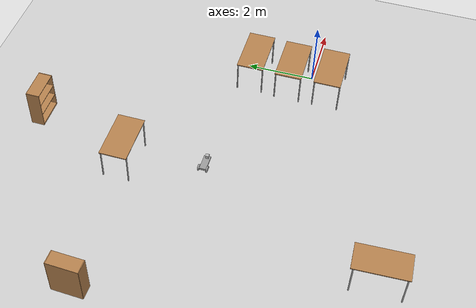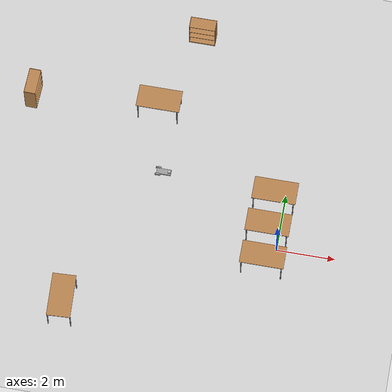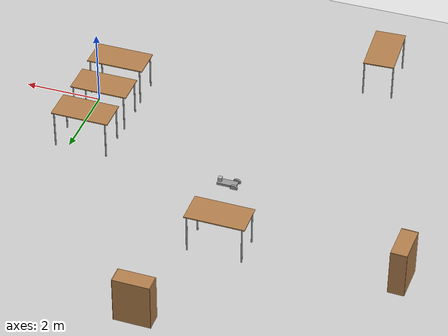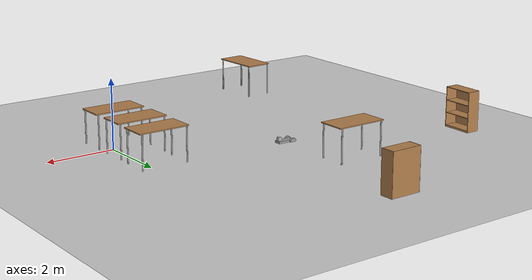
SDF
<sdf version="1.6">
 <world name="default">
  <model name="ground_plane">
   <static>1</static>
   <link name="link">
    <collision name="collision">
     <geometry><plane><normal>0 0 1</normal><size>100 100</size></plane></geometry>
     <surface>
      <contact><collide_bitmask>65535</collide_bitmask></contact>
      <friction><ode><mu>100</mu><mu2>50</mu2></ode></friction>
     </surface>
    </collision>
    <visual name="visual">
     <cast_shadows>0</cast_shadows>
     <geometry><plane><normal>0 0 1</normal><size>100 100</size></plane></geometry>
     <material>
      <script><uri>file://media/materials/scripts/gazebo.material</uri><name>Gazebo/Grey</name></script>
     </material>
    </visual>
   </link>
  </model>
  <model name="table_clone_4">
   <static>1</static>
   <link name="link">
    <collision name="surface">
     <pose>0 0 1 0 -0 0</pose>
     <geometry><box><size>1.5 0.8 0.03</size></box></geometry>
     <surface><friction><ode><mu>0.6</mu><mu2>0.6</mu2></ode></friction></surface>
    </collision>
    <visual name="visual1">
     <pose>0 0 1 0 -0 0</pose>
     <geometry><box><size>1.5 0.8 0.03</size></box></geometry>
     <material>
      <script><uri>file://media/materials/scripts/gazebo.material</uri><name>Gazebo/Wood</name></script>
     </material>
    </visual>
    <collision name="front_left_leg">
     <pose>0.68 0.38 0.5 0 -0 0</pose>
     <geometry><cylinder><radius>0.02</radius><length>1</length></cylinder></geometry>
    </collision>
    <visual name="front_left_leg">
     <pose>0.68 0.38 0.5 0 -0 0</pose>
     <geometry><cylinder><radius>0.02</radius><length>1</length></cylinder></geometry>
     <material>
      <script><uri>file://media/materials/scripts/gazebo.material</uri><name>Gazebo/Grey</name></script>
     </material>
    </visual>
    <collision name="front_right_leg">
     <pose>0.68 -0.38 0.5 0 -0 0</pose>
     <geometry><cylinder><radius>0.02</radius><length>1</length></cylinder></geometry>
    </collision>
    <visual name="front_right_leg">
     <pose>0.68 -0.38 0.5 0 -0 0</pose>
     <geometry><cylinder><radius>0.02</radius><length>1</length></cylinder></geometry>
     <material>
      <script><uri>file://media/materials/scripts/gazebo.material</uri><name>Gazebo/Grey</name></script>
     </material>
    </visual>
    <collision name="back_right_leg">
     <pose>-0.68 -0.38 0.5 0 -0 0</pose>
     <geometry><cylinder><radius>0.02</radius><length>1</length></cylinder></geometry>
    </collision>
    <visual name="back_right_leg">
     <pose>-0.68 -0.38 0.5 0 -0 0</pose>
     <geometry><cylinder><radius>0.02</radius><length>1</length></cylinder></geometry>
     <material>
      <script><uri>file://media/materials/scripts/gazebo.material</uri><name>Gazebo/Grey</name></script>
     </material>
    </visual>
    <collision name="back_left_leg">
     <pose>-0.68 0.38 0.5 0 -0 0</pose>
     <geometry><cylinder><radius>0.02</radius><length>1</length></cylinder></geometry>
    </collision>
    <visual name="back_left_leg">
     <pose>-0.68 0.38 0.5 0 -0 0</pose>
     <geometry><cylinder><radius>0.02</radius><length>1</length></cylinder></geometry>
     <material>
      <script><uri>file://media/materials/scripts/gazebo.material</uri><name>Gazebo/Grey</name></script>
     </material>
    </visual>
   </link>
   <pose>-0.355759 1.73772 0 0 -0 0</pose>
  </model>
  <model name="table_clone_5">
   <static>1</static>
   <link name="link">
    <collision name="surface">
     <pose>0 0 1 0 -0 0</pose>
     <geometry><box><size>1.5 0.8 0.03</size></box></geometry>
     <surface><friction><ode><mu>0.6</mu><mu2>0.6</mu2></ode></friction></surface>
    </collision>
    <visual name="visual1">
     <pose>0 0 1 0 -0 0</pose>
     <geometry><box><size>1.5 0.8 0.03</size></box></geometry>
     <material>
      <script><uri>file://media/materials/scripts/gazebo.material</uri><name>Gazebo/Wood</name></script>
     </material>
    </visual>
    <collision name="front_left_leg">
     <pose>0.68 0.38 0.5 0 -0 0</pose>
     <geometry><cylinder><radius>0.02</radius><length>1</length></cylinder></geometry>
    </collision>
    <visual name="front_left_leg">
     <pose>0.68 0.38 0.5 0 -0 0</pose>
     <geometry><cylinder><radius>0.02</radius><length>1</length></cylinder></geometry>
     <material>
      <script><uri>file://media/materials/scripts/gazebo.material</uri><name>Gazebo/Grey</name></script>
     </material>
    </visual>
    <collision name="front_right_leg">
     <pose>0.68 -0.38 0.5 0 -0 0</pose>
     <geometry><cylinder><radius>0.02</radius><length>1</length></cylinder></geometry>
    </collision>
    <visual name="front_right_leg">
     <pose>0.68 -0.38 0.5 0 -0 0</pose>
     <geometry><cylinder><radius>0.02</radius><length>1</length></cylinder></geometry>
     <material>
      <script><uri>file://media/materials/scripts/gazebo.material</uri><name>Gazebo/Grey</name></script>
     </material>
    </visual>
    <collision name="back_right_leg">
     <pose>-0.68 -0.38 0.5 0 -0 0</pose>
     <geometry><cylinder><radius>0.02</radius><length>1</length></cylinder></geometry>
    </collision>
    <visual name="back_right_leg">
     <pose>-0.68 -0.38 0.5 0 -0 0</pose>
     <geometry><cylinder><radius>0.02</radius><length>1</length></cylinder></geometry>
     <material>
      <script><uri>file://media/materials/scripts/gazebo.material</uri><name>Gazebo/Grey</name></script>
     </material>
    </visual>
    <collision name="back_left_leg">
     <pose>-0.68 0.38 0.5 0 -0 0</pose>
     <geometry><cylinder><radius>0.02</radius><length>1</length></cylinder></geometry>
    </collision>
    <visual name="back_left_leg">
     <pose>-0.68 0.38 0.5 0 -0 0</pose>
     <geometry><cylinder><radius>0.02</radius><length>1</length></cylinder></geometry>
     <material>
      <script><uri>file://media/materials/scripts/gazebo.material</uri><name>Gazebo/Grey</name></script>
     </material>
    </visual>
   </link>
   <pose>-0.391017 0.561094 0 0 -0 0</pose>
  </model>
  <model name="table_clone_6">
   <static>1</static>
   <link name="link">
    <collision name="surface">
     <pose>0 0 1 0 -0 0</pose>
     <geometry><box><size>1.5 0.8 0.03</size></box></geometry>
     <surface><friction><ode><mu>0.6</mu><mu2>0.6</mu2></ode></friction></surface>
    </collision>
    <visual name="visual1">
     <pose>0 0 1 0 -0 0</pose>
     <geometry><box><size>1.5 0.8 0.03</size></box></geometry>
     <material>
      <script><uri>file://media/materials/scripts/gazebo.material</uri><name>Gazebo/Wood</name></script>
     </material>
    </visual>
    <collision name="front_left_leg">
     <pose>0.68 0.38 0.5 0 -0 0</pose>
     <geometry><cylinder><radius>0.02</radius><length>1</length></cylinder></geometry>
    </collision>
    <visual name="front_left_leg">
     <pose>0.68 0.38 0.5 0 -0 0</pose>
     <geometry><cylinder><radius>0.02</radius><length>1</length></cylinder></geometry>
     <material>
      <script><uri>file://media/materials/scripts/gazebo.material</uri><name>Gazebo/Grey</name></script>
     </material>
    </visual>
    <collision name="front_right_leg">
     <pose>0.68 -0.38 0.5 0 -0 0</pose>
     <geometry><cylinder><radius>0.02</radius><length>1</length></cylinder></geometry>
    </collision>
    <visual name="front_right_leg">
     <pose>0.68 -0.38 0.5 0 -0 0</pose>
     <geometry><cylinder><radius>0.02</radius><length>1</length></cylinder></geometry>
     <material>
      <script><uri>file://media/materials/scripts/gazebo.material</uri><name>Gazebo/Grey</name></script>
     </material>
    </visual>
    <collision name="back_right_leg">
     <pose>-0.68 -0.38 0.5 0 -0 0</pose>
     <geometry><cylinder><radius>0.02</radius><length>1</length></cylinder></geometry>
    </collision>
    <visual name="back_right_leg">
     <pose>-0.68 -0.38 0.5 0 -0 0</pose>
     <geometry><cylinder><radius>0.02</radius><length>1</length></cylinder></geometry>
     <material>
      <script><uri>file://media/materials/scripts/gazebo.material</uri><name>Gazebo/Grey</name></script>
     </material>
    </visual>
    <collision name="back_left_leg">
     <pose>-0.68 0.38 0.5 0 -0 0</pose>
     <geometry><cylinder><radius>0.02</radius><length>1</length></cylinder></geometry>
    </collision>
    <visual name="back_left_leg">
     <pose>-0.68 0.38 0.5 0 -0 0</pose>
     <geometry><cylinder><radius>0.02</radius><length>1</length></cylinder></geometry>
     <material>
      <script><uri>file://media/materials/scripts/gazebo.material</uri><name>Gazebo/Grey</name></script>
     </material>
    </visual>
   </link>
   <pose>-0.375932 -0.615177 0 0 -0 0</pose>
  </model>
  <model name="table_clone_4_clone">
   <static>1</static>
   <link name="link">
    <collision name="surface">
     <pose>0 0 1 0 -0 0</pose>
     <geometry><box><size>1.5 0.8 0.03</size></box></geometry>
     <surface><friction><ode><mu>0.6</mu><mu2>0.6</mu2></ode></friction></surface>
    </collision>
    <visual name="visual1">
     <pose>0 0 1 0 -0 0</pose>
     <geometry><box><size>1.5 0.8 0.03</size></box></geometry>
     <material>
      <script><uri>file://media/materials/scripts/gazebo.material</uri><name>Gazebo/Wood</name></script>
     </material>
    </visual>
    <collision name="front_left_leg">
     <pose>0.68 0.38 0.5 0 -0 0</pose>
     <geometry><cylinder><radius>0.02</radius><length>1</length></cylinder></geometry>
    </collision>
    <visual name="front_left_leg">
     <pose>0.68 0.38 0.5 0 -0 0</pose>
     <geometry><cylinder><radius>0.02</radius><length>1</length></cylinder></geometry>
     <material>
      <script><uri>file://media/materials/scripts/gazebo.material</uri><name>Gazebo/Grey</name></script>
     </material>
    </visual>
    <collision name="front_right_leg">
     <pose>0.68 -0.38 0.5 0 -0 0</pose>
     <geometry><cylinder><radius>0.02</radius><length>1</length></cylinder></geometry>
    </collision>
    <visual name="front_right_leg">
     <pose>0.68 -0.38 0.5 0 -0 0</pose>
     <geometry><cylinder><radius>0.02</radius><length>1</length></cylinder></geometry>
     <material>
      <script><uri>file://media/materials/scripts/gazebo.material</uri><name>Gazebo/Grey</name></script>
     </material>
    </visual>
    <collision name="back_right_leg">
     <pose>-0.68 -0.38 0.5 0 -0 0</pose>
     <geometry><cylinder><radius>0.02</radius><length>1</length></cylinder></geometry>
    </collision>
    <visual name="back_right_leg">
     <pose>-0.68 -0.38 0.5 0 -0 0</pose>
     <geometry><cylinder><radius>0.02</radius><length>1</length></cylinder></geometry>
     <material>
      <script><uri>file://media/materials/scripts/gazebo.material</uri><name>Gazebo/Grey</name></script>
     </material>
    </visual>
    <collision name="back_left_leg">
     <pose>-0.68 0.38 0.5 0 -0 0</pose>
     <geometry><cylinder><radius>0.02</radius><length>1</length></cylinder></geometry>
    </collision>
    <visual name="back_left_leg">
     <pose>-0.68 0.38 0.5 0 -0 0</pose>
     <geometry><cylinder><radius>0.02</radius><length>1</length></cylinder></geometry>
     <material>
      <script><uri>file://media/materials/scripts/gazebo.material</uri><name>Gazebo/Grey</name></script>
     </material>
    </visual>
   </link>
   <pose>-4.81486 4.39365 0 0 -0 0</pose>
  </model>
  <model name="bookshelf">
   <static>1</static>
   <link name="link">
    <inertial><mass>1</mass></inertial>
    <collision name="back">
     <pose>0 0.005 0.6 0 -0 0</pose>
     <geometry><box><size>0.9 0.01 1.2</size></box></geometry>
    </collision>
    <visual name="visual1">
     <pose>0 0.005 0.6 0 -0 0</pose>
     <geometry><box><size>0.9 0.01 1.2</size></box></geometry>
     <material>
      <script><uri>file://media/materials/scripts/gazebo.material</uri><name>Gazebo/Wood</name></script>
     </material>
    </visual>
    <collision name="left_side">
     <pose>0.45 -0.195 0.6 0 -0 0</pose>
     <geometry><box><size>0.02 0.4 1.2</size></box></geometry>
    </collision>
    <visual name="visual2">
     <pose>0.45 -0.195 0.6 0 -0 0</pose>
     <geometry><box><size>0.02 0.4 1.2</size></box></geometry>
     <material>
      <script><uri>file://media/materials/scripts/gazebo.material</uri><name>Gazebo/Wood</name></script>
     </material>
    </visual>
    <collision name="right_side">
     <pose>-0.45 -0.195 0.6 0 -0 0</pose>
     <geometry><box><size>0.02 0.4 1.2</size></box></geometry>
    </collision>
    <visual name="visual3">
     <pose>-0.45 -0.195 0.6 0 -0 0</pose>
     <geometry><box><size>0.02 0.4 1.2</size></box></geometry>
     <material>
      <script><uri>file://media/materials/scripts/gazebo.material</uri><name>Gazebo/Wood</name></script>
     </material>
    </visual>
    <collision name="bottom">
     <pose>0 -0.195 0.03 0 -0 0</pose>
     <geometry><box><size>0.88 0.4 0.06</size></box></geometry>
    </collision>
    <visual name="visual4">
     <pose>0 -0.195 0.03 0 -0 0</pose>
     <geometry><box><size>0.88 0.4 0.06</size></box></geometry>
     <material>
      <script><uri>file://media/materials/scripts/gazebo.material</uri><name>Gazebo/Wood</name></script>
     </material>
    </visual>
    <collision name="top">
     <pose>0 -0.195 1.19 0 -0 0</pose>
     <geometry><box><size>0.88 0.4 0.02</size></box></geometry>
    </collision>
    <visual name="visual5">
     <pose>0 -0.195 1.19 0 -0 0</pose>
     <geometry><box><size>0.88 0.4 0.02</size></box></geometry>
     <material>
      <script><uri>file://media/materials/scripts/gazebo.material</uri><name>Gazebo/Wood</name></script>
     </material>
    </visual>
    <collision name="low_shelf">
     <pose>0 -0.195 0.43 0 -0 0</pose>
     <geometry><box><size>0.88 0.4 0.02</size></box></geometry>
    </collision>
    <visual name="visual6">
     <pose>0 -0.195 0.43 0 -0 0</pose>
     <geometry><box><size>0.88 0.4 0.02</size></box></geometry>
     <material>
      <script><uri>file://media/materials/scripts/gazebo.material</uri><name>Gazebo/Wood</name></script>
     </material>
    </visual>
    <collision name="high_shelf">
     <pose>0 -0.195 0.8 0 -0 0</pose>
     <geometry><box><size>0.88 0.4 0.02</size></box></geometry>
    </collision>
    <visual name="visual7">
     <pose>0 -0.195 0.8 0 -0 0</pose>
     <geometry><box><size>0.88 0.4 0.02</size></box></geometry>
     <material>
      <script><uri>file://media/materials/scripts/gazebo.material</uri><name>Gazebo/Wood</name></script>
     </material>
    </visual>
   </link>
   <pose>-9.38503 4.19513 0 0 -0 1.54267</pose>
  </model>
  <model name="bookshelf_0">
   <static>1</static>
   <link name="link">
    <inertial><mass>1</mass></inertial>
    <collision name="back">
     <pose>0 0.005 0.6 0 -0 0</pose>
     <geometry><box><size>0.9 0.01 1.2</size></box></geometry>
    </collision>
    <visual name="visual1">
     <pose>0 0.005 0.6 0 -0 0</pose>
     <geometry><box><size>0.9 0.01 1.2</size></box></geometry>
     <material>
      <script><uri>file://media/materials/scripts/gazebo.material</uri><name>Gazebo/Wood</name></script>
     </material>
    </visual>
    <collision name="left_side">
     <pose>0.45 -0.195 0.6 0 -0 0</pose>
     <geometry><box><size>0.02 0.4 1.2</size></box></geometry>
    </collision>
    <visual name="visual2">
     <pose>0.45 -0.195 0.6 0 -0 0</pose>
     <geometry><box><size>0.02 0.4 1.2</size></box></geometry>
     <material>
      <script><uri>file://media/materials/scripts/gazebo.material</uri><name>Gazebo/Wood</name></script>
     </material>
    </visual>
    <collision name="right_side">
     <pose>-0.45 -0.195 0.6 0 -0 0</pose>
     <geometry><box><size>0.02 0.4 1.2</size></box></geometry>
    </collision>
    <visual name="visual3">
     <pose>-0.45 -0.195 0.6 0 -0 0</pose>
     <geometry><box><size>0.02 0.4 1.2</size></box></geometry>
     <material>
      <script><uri>file://media/materials/scripts/gazebo.material</uri><name>Gazebo/Wood</name></script>
     </material>
    </visual>
    <collision name="bottom">
     <pose>0 -0.195 0.03 0 -0 0</pose>
     <geometry><box><size>0.88 0.4 0.06</size></box></geometry>
    </collision>
    <visual name="visual4">
     <pose>0 -0.195 0.03 0 -0 0</pose>
     <geometry><box><size>0.88 0.4 0.06</size></box></geometry>
     <material>
      <script><uri>file://media/materials/scripts/gazebo.material</uri><name>Gazebo/Wood</name></script>
     </material>
    </visual>
    <collision name="top">
     <pose>0 -0.195 1.19 0 -0 0</pose>
     <geometry><box><size>0.88 0.4 0.02</size></box></geometry>
    </collision>
    <visual name="visual5">
     <pose>0 -0.195 1.19 0 -0 0</pose>
     <geometry><box><size>0.88 0.4 0.02</size></box></geometry>
     <material>
      <script><uri>file://media/materials/scripts/gazebo.material</uri><name>Gazebo/Wood</name></script>
     </material>
    </visual>
    <collision name="low_shelf">
     <pose>0 -0.195 0.43 0 -0 0</pose>
     <geometry><box><size>0.88 0.4 0.02</size></box></geometry>
    </collision>
    <visual name="visual6">
     <pose>0 -0.195 0.43 0 -0 0</pose>
     <geometry><box><size>0.88 0.4 0.02</size></box></geometry>
     <material>
      <script><uri>file://media/materials/scripts/gazebo.material</uri><name>Gazebo/Wood</name></script>
     </material>
    </visual>
    <collision name="high_shelf">
     <pose>0 -0.195 0.8 0 -0 0</pose>
     <geometry><box><size>0.88 0.4 0.02</size></box></geometry>
    </collision>
    <visual name="visual7">
     <pose>0 -0.195 0.8 0 -0 0</pose>
     <geometry><box><size>0.88 0.4 0.02</size></box></geometry>
     <material>
      <script><uri>file://media/materials/scripts/gazebo.material</uri><name>Gazebo/Wood</name></script>
     </material>
    </visual>
   </link>
   <pose>-3.81555 7.54531 0 0 -0 0</pose>
  </model>
  <model name="table_clone_4_clone_0_clone">
   <static>1</static>
   <link name="link">
    <collision name="surface">
     <pose>0 0 1 0 -0 0</pose>
     <geometry><box><size>1.5 0.8 0.03</size></box></geometry>
     <surface><friction><ode><mu>0.6</mu><mu2>0.6</mu2></ode></friction></surface>
    </collision>
    <visual name="visual1">
     <pose>0 0 1 0 -0 0</pose>
     <geometry><box><size>1.5 0.8 0.03</size></box></geometry>
     <material>
      <script><uri>file://media/materials/scripts/gazebo.material</uri><name>Gazebo/Wood</name></script>
     </material>
    </visual>
    <collision name="front_left_leg">
     <pose>0.68 0.38 0.5 0 -0 0</pose>
     <geometry><cylinder><radius>0.02</radius><length>1</length></cylinder></geometry>
    </collision>
    <visual name="front_left_leg">
     <pose>0.68 0.38 0.5 0 -0 0</pose>
     <geometry><cylinder><radius>0.02</radius><length>1</length></cylinder></geometry>
     <material>
      <script><uri>file://media/materials/scripts/gazebo.material</uri><name>Gazebo/Grey</name></script>
     </material>
    </visual>
    <collision name="front_right_leg">
     <pose>0.68 -0.38 0.5 0 -0 0</pose>
     <geometry><cylinder><radius>0.02</radius><length>1</length></cylinder></geometry>
    </collision>
    <visual name="front_right_leg">
     <pose>0.68 -0.38 0.5 0 -0 0</pose>
     <geometry><cylinder><radius>0.02</radius><length>1</length></cylinder></geometry>
     <material>
      <script><uri>file://media/materials/scripts/gazebo.material</uri><name>Gazebo/Grey</name></script>
     </material>
    </visual>
    <collision name="back_right_leg">
     <pose>-0.68 -0.38 0.5 0 -0 0</pose>
     <geometry><cylinder><radius>0.02</radius><length>1</length></cylinder></geometry>
    </collision>
    <visual name="back_right_leg">
     <pose>-0.68 -0.38 0.5 0 -0 0</pose>
     <geometry><cylinder><radius>0.02</radius><length>1</length></cylinder></geometry>
     <material>
      <script><uri>file://media/materials/scripts/gazebo.material</uri><name>Gazebo/Grey</name></script>
     </material>
    </visual>
    <collision name="back_left_leg">
     <pose>-0.68 0.38 0.5 0 -0 0</pose>
     <geometry><cylinder><radius>0.02</radius><length>1</length></cylinder></geometry>
    </collision>
    <visual name="back_left_leg">
     <pose>-0.68 0.38 0.5 0 -0 0</pose>
     <geometry><cylinder><radius>0.02</radius><length>1</length></cylinder></geometry>
     <material>
      <script><uri>file://media/materials/scripts/gazebo.material</uri><name>Gazebo/Grey</name></script>
     </material>
    </visual>
   </link>
   <pose>-6.73397 -3.22442 0 0 -0 1.61882</pose>
  </model>
  <model name="TriRobot_clone">
   <link name="link_2">
    <pose>0.001674 0.000657 -0.001317 0 -0 0</pose>
    <inertial>
     <mass>1</mass>
     <inertia>
      <ixx>0.166667</ixx>
      <ixy>0</ixy>
      <ixz>0</ixz>
      <iyy>0.166667</iyy>
      <iyz>0</iyz>
      <izz>0.166667</izz>
     </inertia>
    </inertial>
    <visual name="visual">
     <geometry><box><size>0.5 0.2 0.1</size></box></geometry>
     <material>
      <lighting>1</lighting>
      <script><uri>file://media/materials/scripts/gazebo.material</uri><name>Gazebo/Grey</name></script>
      <shader type="pixel"><normal_map>__default__</normal_map></shader>
      <ambient>0.3 0.3 0.3 1</ambient>
      <diffuse>0.7 0.7 0.7 1</diffuse>
      <specular>0.01 0.01 0.01 1</specular>
      <emissive>0 0 0 1</emissive>
     </material>
    </visual>
    <collision name="collision">
     <geometry><box><size>0.5 0.2 0.1</size></box></geometry>
     <surface>
      <friction>
       <ode><mu>1</mu><mu2>1</mu2><fdir1>0 0 0</fdir1><slip1>0</slip1><slip2>0</slip2></ode>
       <torsional>
        <coefficient>1</coefficient>
        <patch_radius>0</patch_radius>
        <surface_radius>0</surface_radius>
        <use_patch_radius>1</use_patch_radius>
        <ode><slip>0</slip></ode>
       </torsional>
      </friction>
      <bounce><restitution_coefficient>0</restitution_coefficient><threshold>1e+06</threshold></bounce>
      <contact>
       <collide_without_contact>0</collide_without_contact>
       <collide_without_contact_bitmask>1</collide_without_contact_bitmask>
       <collide_bitmask>1</collide_bitmask>
       <ode>
        <soft_cfm>0</soft_cfm>
        <soft_erp>0.2</soft_erp>
        <kp>1e+13</kp>
        <kd>1</kd>
        <max_vel>0.01</max_vel>
        <min_depth>0</min_depth>
       </ode>
       <bullet>
        <split_impulse>1</split_impulse>
        <split_impulse_penetration_threshold>-0.01</split_impulse_penetration_threshold>
        <soft_cfm>0</soft_cfm>
        <soft_erp>0.2</soft_erp>
        <kp>1e+13</kp>
        <kd>1</kd>
       </bullet>
      </contact>
     </surface>
    </collision>
   </link>
   <link name="link_3">
    <pose>-0.198326 0.125657 -0.001317 1.5707 -0 0</pose>
    <inertial>
     <mass>1</mass>
     <inertia><ixx>0.145833</ixx><ixy>0</ixy><ixz>0</ixz><iyy>0.145833</iyy><iyz>0</iyz><izz>0.125</izz></inertia>
    </inertial>
    <visual name="visual">
     <geometry><cylinder><radius>0.1</radius><length>0.05</length></cylinder></geometry>
     <material>
      <lighting>1</lighting>
      <script><uri>file://media/materials/scripts/gazebo.material</uri><name>Gazebo/Grey</name></script>
      <shader type="pixel"><normal_map>__default__</normal_map></shader>
      <ambient>0.3 0.3 0.3 1</ambient>
      <diffuse>0.7 0.7 0.7 1</diffuse>
      <specular>0.01 0.01 0.01 1</specular>
      <emissive>0 0 0 1</emissive>
     </material>
    </visual>
    <collision name="collision">
     <geometry><cylinder><radius>0.1</radius><length>0.05</length></cylinder></geometry>
     <surface>
      <friction>
       <ode><mu>1</mu><mu2>1</mu2><fdir1>0 0 0</fdir1><slip1>0</slip1><slip2>0</slip2></ode>
       <torsional>
        <coefficient>1</coefficient>
        <patch_radius>0</patch_radius>
        <surface_radius>0</surface_radius>
        <use_patch_radius>1</use_patch_radius>
        <ode><slip>0</slip></ode>
       </torsional>
      </friction>
      <bounce><restitution_coefficient>0</restitution_coefficient><threshold>1e+06</threshold></bounce>
      <contact>
       <collide_without_contact>0</collide_without_contact>
       <collide_without_contact_bitmask>1</collide_without_contact_bitmask>
       <collide_bitmask>1</collide_bitmask>
       <ode>
        <soft_cfm>0</soft_cfm>
        <soft_erp>0.2</soft_erp>
        <kp>1e+13</kp>
        <kd>1</kd>
        <max_vel>0.01</max_vel>
        <min_depth>0</min_depth>
       </ode>
       <bullet>
        <split_impulse>1</split_impulse>
        <split_impulse_penetration_threshold>-0.01</split_impulse_penetration_threshold>
        <soft_cfm>0</soft_cfm>
        <soft_erp>0.2</soft_erp>
        <kp>1e+13</kp>
        <kd>1</kd>
       </bullet>
      </contact>
     </surface>
    </collision>
   </link>
   <link name="link_3_clone">
    <pose>-0.198326 -0.124343 -0.001317 1.5707 -0 0</pose>
    <inertial>
     <mass>1</mass>
     <inertia><ixx>0.145833</ixx><ixy>0</ixy><ixz>0</ixz><iyy>0.145833</iyy><iyz>0</iyz><izz>0.125</izz></inertia>
    </inertial>
    <visual name="visual">
     <geometry><cylinder><radius>0.1</radius><length>0.05</length></cylinder></geometry>
     <material>
      <lighting>1</lighting>
      <script><uri>file://media/materials/scripts/gazebo.material</uri><name>Gazebo/Grey</name></script>
      <shader type="pixel"><normal_map>__default__</normal_map></shader>
      <ambient>0.3 0.3 0.3 1</ambient>
      <diffuse>0.7 0.7 0.7 1</diffuse>
      <specular>0.01 0.01 0.01 1</specular>
      <emissive>0 0 0 1</emissive>
     </material>
    </visual>
    <collision name="collision">
     <geometry><cylinder><radius>0.1</radius><length>0.05</length></cylinder></geometry>
     <surface>
      <friction>
       <ode><mu>1</mu><mu2>1</mu2><fdir1>0 0 0</fdir1><slip1>0</slip1><slip2>0</slip2></ode>
       <torsional>
        <coefficient>1</coefficient>
        <patch_radius>0</patch_radius>
        <surface_radius>0</surface_radius>
        <use_patch_radius>1</use_patch_radius>
        <ode><slip>0</slip></ode>
       </torsional>
      </friction>
      <bounce><restitution_coefficient>0</restitution_coefficient><threshold>1e+06</threshold></bounce>
      <contact>
       <collide_without_contact>0</collide_without_contact>
       <collide_without_contact_bitmask>1</collide_without_contact_bitmask>
       <collide_bitmask>1</collide_bitmask>
       <ode>
        <soft_cfm>0</soft_cfm>
        <soft_erp>0.2</soft_erp>
        <kp>1e+13</kp>
        <kd>1</kd>
        <max_vel>0.01</max_vel>
        <min_depth>0</min_depth>
       </ode>
       <bullet>
        <split_impulse>1</split_impulse>
        <split_impulse_penetration_threshold>-0.01</split_impulse_penetration_threshold>
        <soft_cfm>0</soft_cfm>
        <soft_erp>0.2</soft_erp>
        <kp>1e+13</kp>
        <kd>1</kd>
       </bullet>
      </contact>
     </surface>
    </collision>
   </link>
   <link name="link_5">
    <pose>0.201674 0.000657 -0.051317 0 -0 0</pose>
    <inertial>
     <mass>1</mass>
     <inertia><ixx>0.1</ixx><ixy>0</ixy><ixz>0</ixz><iyy>0.1</iyy><iyz>0</iyz><izz>0.1</izz></inertia>
    </inertial>
    <visual name="visual">
     <geometry><sphere><radius>0.05</radius></sphere></geometry>
     <material>
      <lighting>1</lighting>
      <script><uri>file://media/materials/scripts/gazebo.material</uri><name>Gazebo/Grey</name></script>
      <shader type="pixel"><normal_map>__default__</normal_map></shader>
      <ambient>0.3 0.3 0.3 1</ambient>
      <diffuse>0.7 0.7 0.7 1</diffuse>
      <specular>0.01 0.01 0.01 1</specular>
      <emissive>0 0 0 1</emissive>
     </material>
    </visual>
    <collision name="collision">
     <geometry><sphere><radius>0.05</radius></sphere></geometry>
     <surface>
      <friction>
       <ode><mu>1</mu><mu2>1</mu2><fdir1>0 0 0</fdir1><slip1>0</slip1><slip2>0</slip2></ode>
       <torsional>
        <coefficient>1</coefficient>
        <patch_radius>0</patch_radius>
        <surface_radius>0</surface_radius>
        <use_patch_radius>1</use_patch_radius>
        <ode><slip>0</slip></ode>
       </torsional>
      </friction>
      <bounce><restitution_coefficient>0</restitution_coefficient><threshold>1e+06</threshold></bounce>
      <contact>
       <collide_without_contact>0</collide_without_contact>
       <collide_without_contact_bitmask>1</collide_without_contact_bitmask>
       <collide_bitmask>1</collide_bitmask>
       <ode>
        <soft_cfm>0</soft_cfm>
        <soft_erp>0.2</soft_erp>
        <kp>1e+13</kp>
        <kd>1</kd>
        <max_vel>0.01</max_vel>
        <min_depth>0</min_depth>
       </ode>
       <bullet>
        <split_impulse>1</split_impulse>
        <split_impulse_penetration_threshold>-0.01</split_impulse_penetration_threshold>
        <soft_cfm>0</soft_cfm>
        <soft_erp>0.2</soft_erp>
        <kp>1e+13</kp>
        <kd>1</kd>
       </bullet>
      </contact>
     </surface>
    </collision>
   </link>
   <model name="depth_camera">
    <link name="link">
     <pose>0 0 0.05 0 -0 0</pose>
     <inertial>
      <mass>0.1</mass>
      <inertia>
       <ixx>0.000166667</ixx>
       <iyy>0.000166667</iyy>
       <izz>0.000166667</izz>
       <ixy>0</ixy>
       <ixz>0</ixz>
       <iyz>0</iyz>
      </inertia>
     </inertial>
     <collision name="collision"><geometry><box><size>0.1 0.1 0.1</size></box></geometry></collision>
     <visual name="visual"><geometry><box><size>0.1 0.1 0.1</size></box></geometry></visual>
     <sensor name="camera" type="depth">
      <camera name="__default__">
       <horizontal_fov>1.047</horizontal_fov>
       <image><width>320</width><height>240</height></image>
       <clip><near>0.1</near><far>100</far></clip>
      </camera>
      <always_on>1</always_on>
      <update_rate>30</update_rate>
      <visualize>1</visualize>
     </sensor>
    </link>
    <pose>0.193306 -0.00263 0.055267 0 -0 0</pose>
   </model>
   <joint name="link_2_JOINT_10" type="revolute">
    <parent>link_2</parent>
    <child>link_3</child>
    <axis>
     <xyz>0 0 1</xyz>
     <use_parent_model_frame>0</use_parent_model_frame>
     <limit>
      <lower>-1.79769e+308</lower>
      <upper>1.79769e+308</upper>
      <effort>-1</effort>
      <velocity>-1</velocity>
     </limit>
     <dynamics>
      <spring_reference>0</spring_reference>
      <spring_stiffness>0</spring_stiffness>
      <damping>0</damping>
      <friction>0</friction>
     </dynamics>
    </axis>
    <physics>
     <ode><limit><cfm>0</cfm><erp>0.2</erp></limit><suspension><cfm>0</cfm><erp>0.2</erp></suspension></ode>
    </physics>
   </joint>
   <joint name="link_2_JOINT_11" type="revolute">
    <parent>link_2</parent>
    <child>link_3_clone</child>
    <pose>0 0 0 0 -0.01 0</pose>
    <axis>
     <xyz>0 0 -1</xyz>
     <use_parent_model_frame>0</use_parent_model_frame>
     <limit>
      <lower>-1.79769e+308</lower>
      <upper>1.79769e+308</upper>
      <effort>-1</effort>
      <velocity>-1</velocity>
     </limit>
     <dynamics>
      <spring_reference>0</spring_reference>
      <spring_stiffness>0</spring_stiffness>
      <damping>0</damping>
      <friction>0</friction>
     </dynamics>
    </axis>
    <physics>
     <ode><limit><cfm>0</cfm><erp>0.2</erp></limit><suspension><cfm>0</cfm><erp>0.2</erp></suspension></ode>
    </physics>
   </joint>
   <joint name="link_2_JOINT_12" type="ball">
    <parent>link_2</parent>
    <child>link_5</child>
    <physics>
     <ode><limit><cfm>0</cfm><erp>0.2</erp></limit><suspension><cfm>0</cfm><erp>0.2</erp></suspension></ode>
    </physics>
   </joint>
   <joint name="link_2_JOINT_14" type="fixed">
    <parent>link_2</parent>
    <child>depth_camera::link</child>
    <physics>
     <ode><limit><cfm>0</cfm><erp>0.2</erp></limit><suspension><cfm>0</cfm><erp>0.2</erp></suspension></ode>
    </physics>
   </joint>
   <static>0</static>
   <plugin name="follow_sensor" filename="libFollowerPlugin.so"/>
   <pose>-4.25676 2.14967 0 0 -0 0</pose>
  </model>
 </world>
</sdf>
